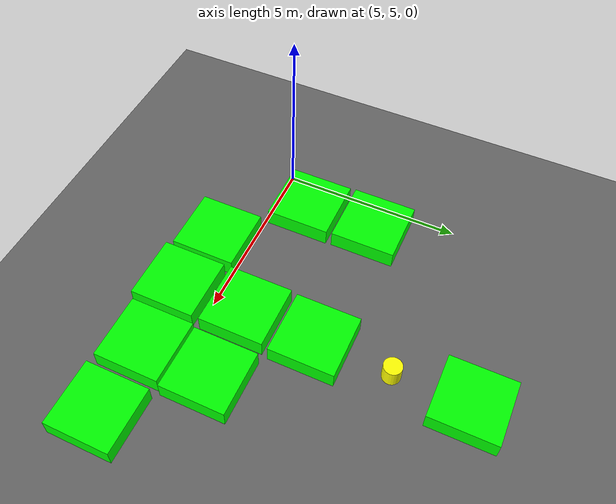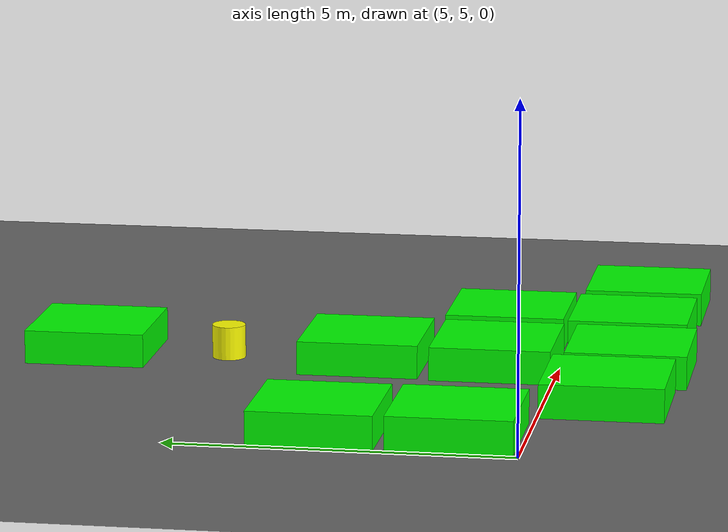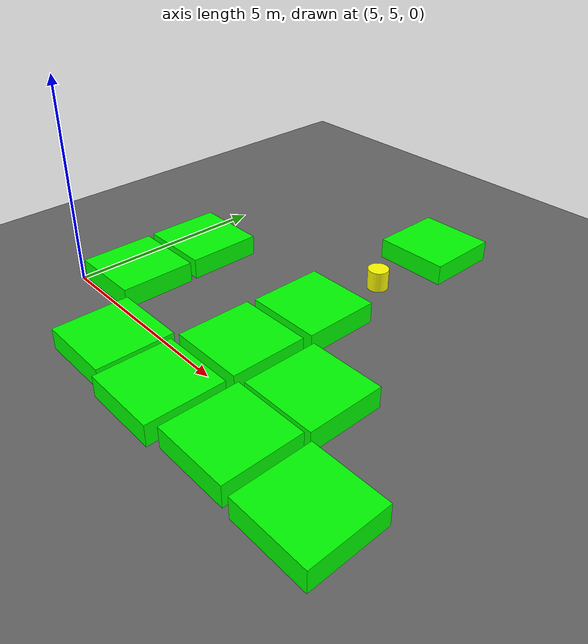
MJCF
<mujoco model="lvl5_corridor_obs10_dlong_depth1_seed47">
    <compiler angle="degree" coordinate="local" inertiafromgeom="true"/>
    <option integrator="RK4" timestep="0.01"/>

    <asset>
        <texture builtin="gradient" height="100" rgb1="0.6 0.8 1" rgb2="0 0 0" type="skybox" width="100"/>
        <texture name="floor_texture" type="2d" builtin="checker" width="100" height="100" rgb1="0 0 0" rgb2="0.8 0.8 0.8"/>
        <material name="MatPlane" reflectance="0.5" shininess="1" specular="1" texrepeat="10 10" texture="floor_texture"/>
    </asset>

    <!-- Excluding the contact between the agent and the goal, and the agent and the floor -->
    <contact>
        <exclude body1="agent" body2="goal"/>
        <exclude body1 = "agent" body2 = "floor"/>
    </contact>

    <extension>
        <plugin plugin = "mujoco.pid">
            <instance name = "pid1">
                <config key="kp" value="2"/>
                <config key="ki" value="0"/>
                <config key="kd" value="55"/>
            </instance>
        </plugin>
    </extension>

    <worldbody>
        <light cutoff="100" diffuse="1 1 1" dir="-0 0 -1.3" directional="true" exponent="1" pos="0 0 1.3" specular=".1 .1 .1"/>
        <body name="floor" pos="0 0 0">
            <geom name="floor_geom" type="plane" size="20 20 0.1" material="MatPlane"/>
        </body>

                <body name="goal" pos="0.0000 0.0000 0">
            <geom name="goal_geom" type="plane" size="0.5 0.5 1" pos="0 0 0" rgba="1 0 0 1"/>
        </body>

                <body name="agent" pos="10.0000 10.0000 0.250">
            <joint name="j1" type="slide" axis ="1 0 0 "/>
            <joint name="j2" type="slide" axis ="0 1 0 "/>
            <geom name="agent_geom" type="cylinder" size="0.25 0.25" rgba="1 1 0 1"/>
        </body>

        <body name="obstacle1" pos="10.0166 12.0379 0.250">  <geom name="obstacle1_geom" type="box" size="0.9000 0.9000 0.250" rgba="0 1 0 1"/></body>
        <body name="obstacle2" pos="5.9259 7.9237 0.250">  <geom name="obstacle2_geom" type="box" size="0.9000 0.9000 0.250" rgba="0 1 0 1"/></body>
        <body name="obstacle3" pos="9.9757 7.9053 0.250">  <geom name="obstacle3_geom" type="box" size="0.9000 0.9000 0.250" rgba="0 1 0 1"/></body>
        <body name="obstacle4" pos="5.9513 5.9716 0.250">  <geom name="obstacle4_geom" type="box" size="0.9000 0.9000 0.250" rgba="0 1 0 1"/></body>
        <body name="obstacle5" pos="9.9251 5.9281 0.250">  <geom name="obstacle5_geom" type="box" size="0.9000 0.9000 0.250" rgba="0 1 0 1"/></body>
        <body name="obstacle6" pos="11.9922 5.9713 0.250">  <geom name="obstacle6_geom" type="box" size="0.9000 0.9000 0.250" rgba="0 1 0 1"/></body>
        <body name="obstacle7" pos="8.0208 4.0806 0.250">  <geom name="obstacle7_geom" type="box" size="0.9000 0.9000 0.250" rgba="0 1 0 1"/></body>
        <body name="obstacle8" pos="9.9363 3.9302 0.250">  <geom name="obstacle8_geom" type="box" size="0.9000 0.9000 0.250" rgba="0 1 0 1"/></body>
        <body name="obstacle9" pos="11.9149 4.0938 0.250">  <geom name="obstacle9_geom" type="box" size="0.9000 0.9000 0.250" rgba="0 1 0 1"/></body>
        <body name="obstacle10" pos="13.9539 4.0478 0.250">  <geom name="obstacle10_geom" type="box" size="0.9000 0.9000 0.250" rgba="0 1 0 1"/></body>

    </worldbody>

    <sensor>
<!-- SENSORS -->

        <distance name="dist1" geom1="agent_geom" geom2="obstacle1_geom" cutoff="1.5"/>
        <distance name="dist2" geom1="agent_geom" geom2="obstacle2_geom" cutoff="1.5"/>
        <distance name="dist3" geom1="agent_geom" geom2="obstacle3_geom" cutoff="1.5"/>
        <distance name="dist4" geom1="agent_geom" geom2="obstacle4_geom" cutoff="1.5"/>
        <distance name="dist5" geom1="agent_geom" geom2="obstacle5_geom" cutoff="1.5"/>
        <distance name="dist6" geom1="agent_geom" geom2="obstacle6_geom" cutoff="1.5"/>
        <distance name="dist7" geom1="agent_geom" geom2="obstacle7_geom" cutoff="1.5"/>
        <distance name="dist8" geom1="agent_geom" geom2="obstacle8_geom" cutoff="1.5"/>
        <distance name="dist9" geom1="agent_geom" geom2="obstacle9_geom" cutoff="1.5"/>
        <distance name="dist10" geom1="agent_geom" geom2="obstacle10_geom" cutoff="1.5"/>
</sensor>

    <actuator>
        <plugin joint="j1" plugin="mujoco.pid" instance="pid1" />
        <plugin joint="j2" plugin="mujoco.pid" instance="pid1"/>
    </actuator>
</mujoco>
